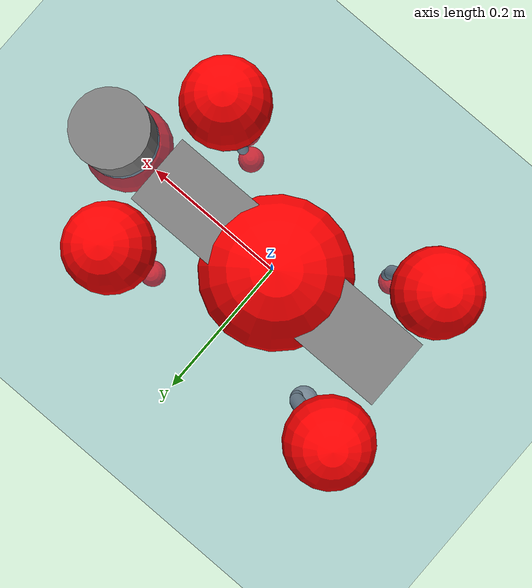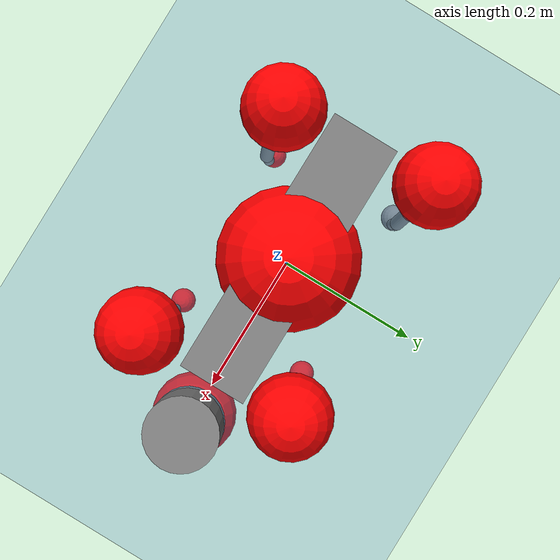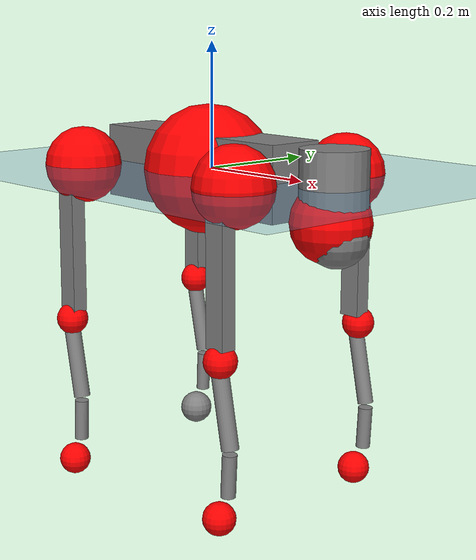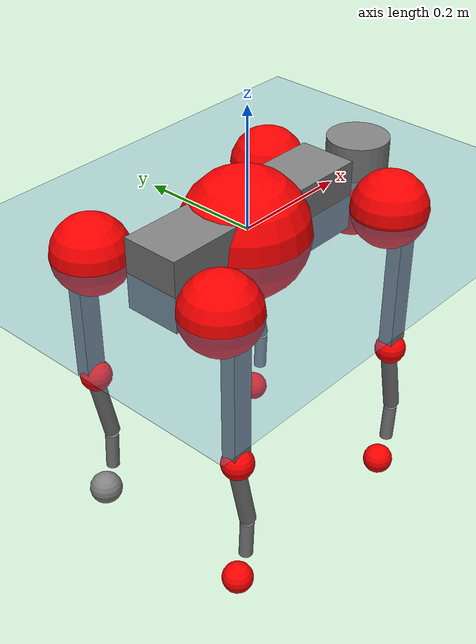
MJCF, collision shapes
<mujoco model="go2">
  <compiler angle="radian" assetdir="assets" balanceinertia="true" inertiafromgeom="false"/>

  <option timestep="0.005" density="1.2" viscosity="2e-05"/>

  <size nkey="1"/>

  <visual>
    <quality shadowsize="8192"/>
    <map shadowclip="0.5"/>
  </visual>

  <default>
    <default class="/">
      <geom contype="0" conaffinity="0" group="1" solref="-1000 -80"/>
      <site size="0.01 0.005 0.005" group="5"/>
      <general forcelimited="true" biastype="affine" gainprm="20" biasprm="0 -20 -0.5"/>
      <default class="go2">
        <joint armature="0.01" damping="0.01" frictionloss="0.2"/>
        <geom condim="1" margin="0.001"/>
        <default class="visual">
          <geom type="mesh" group="2"/>
        </default>
        <default class="collision">
          <geom group="3"/>
          <default class="foot">
            <geom size="0.022 0 0" condim="6" priority="1" friction="0.8 0.02 0.01" solimp="0.015 1 0.022"/>
          </default>
        </default>
        <default class="reward_collision_sphere">
          <geom group="5" rgba="1 0 0 1"/>
        </default>
      </default>
    </default>
  </default>

  <asset>
    <texture type="skybox" colorspace="auto" name="//unnamed_texture_0" builtin="gradient" rgb1="0.95 0.95 0.95" rgb2="0.95 0.95 0.95" width="100" height="600"/>
    <texture type="2d" colorspace="auto" name="texplane" builtin="checker" rgb1="0.345 0.575 0.748" rgb2="0.345 0.575 0.748" markrgb="1 1 1" width="512" height="512"/>
    <material name="MatPlane" class="/" texture="texplane" texuniform="true" texrepeat="2 2" specular="0.9"/>
    <material name="metal" class="/" rgba="0.9 0.95 0.95 1"/>
    <material name="black" class="/" rgba="0 0 0 1"/>
    <material name="white" class="/"/>
    <material name="gray" class="/" rgba="0.671705 0.692426 0.77427 1"/>
    <mesh name="base_0" class="/" file="base_0.obj"/>
    <mesh name="base_1" class="/" file="base_1.obj"/>
    <mesh name="base_2" class="/" file="base_2.obj"/>
    <mesh name="base_3" class="/" file="base_3.obj"/>
    <mesh name="base_4" class="/" file="base_4.obj"/>
    <mesh name="hip_0" class="/" file="hip_0.obj"/>
    <mesh name="hip_1" class="/" file="hip_1.obj"/>
    <mesh name="thigh_0" class="/" file="thigh_0.obj"/>
    <mesh name="thigh_1" class="/" file="thigh_1.obj"/>
    <mesh name="thigh_mirror_0" class="/" file="thigh_mirror_0.obj"/>
    <mesh name="thigh_mirror_1" class="/" file="thigh_mirror_1.obj"/>
    <mesh name="calf_0" class="/" file="calf_0.obj"/>
    <mesh name="calf_1" class="/" file="calf_1.obj"/>
    <mesh name="calf_mirror_0" class="/" file="calf_mirror_0.obj"/>
    <mesh name="calf_mirror_1" class="/" file="calf_mirror_1.obj"/>
    <mesh name="foot" class="/" file="foot.obj"/>
  </asset>

  <worldbody>
    <geom name="floor" class="/" size="100 100 0.125" type="plane" group="0" material="MatPlane"/>
    <light name="toplight_shadow" class="/" pos="0 0 5" dir="0.0990148 0.0990148 -0.990148" type="directional" ambient="0.04 0.04 0.04" diffuse="0.55 0.55 0.55" specular="0.12 0.12 0.12"/>
    <light name="toplight_fill" class="/" pos="0 0 5" dir="0.0990148 0.0990148 -0.990148" type="directional" castshadow="false" ambient="0.04 0.04 0.04" diffuse="0.3 0.3 0.3" specular="0.08 0.08 0.08"/>
    <body name="trunk" childclass="go2" pos="-0.00688084 -0.000594273 -0.00201311" quat="1 0.000362323 -0.000138553 0.000335644">
      <inertial pos="0.0195494 -0.00223147 -0.00621285" quat="-0.00962807 0.717846 -0.00168532 0.696133" mass="7.89551" diaginertia="0.0733894 0.0863637 0.0498739"/>
      <joint name="//unnamed_joint_0" type="free" armature="0" damping="0" frictionloss="0"/>
      <geom name="//unnamed_geom_1" class="visual" material="black" mesh="base_0"/>
      <geom name="//unnamed_geom_2" class="visual" material="black" mesh="base_1"/>
      <geom name="//unnamed_geom_3" class="visual" material="black" mesh="base_2"/>
      <geom name="//unnamed_geom_4" class="visual" material="white" mesh="base_3"/>
      <geom name="//unnamed_geom_5" class="visual" material="gray" mesh="base_4"/>
      <geom name="trunk_1" class="collision" size="0.19526 0.0485295 0.0591696" type="box"/>
      <geom name="trunk_2" class="collision" size="0.0519032 0.0467129" pos="0.273255 0 0.0115721" type="cylinder"/>
      <geom name="trunk_3" class="collision" size="0.048789" pos="0.280926 0 -0.0694324"/>
      <geom name="//unnamed_geom_9" class="reward_collision_sphere" size="0.103806"/>
      <geom name="//unnamed_geom_10" class="reward_collision_sphere" size="0.0622838" pos="0.268461 0 -0.0520743"/>
      <site name="imu" pos="-0.0210395 -0.00946511 0.090742" size="0.0103806"/>
      <camera name="track" pos="0 -1.99639 0" quat="0.707107 0.707107 0 0" mode="trackcom"/>
      <camera name="ego_camera" pos="0.299143 0 0.0520743" quat="-0.5 -0.5 0.5 0.5"/>
      <body name="FL_hip" pos="0.187258 0.0476333 0.00304485" quat="0.999995 -0.00299429 0.000562948 -0.000257605">
        <inertial pos="0.00258136 0.00278747 -0.00181249" quat="0.497288 0.499065 0.504528 0.499089" mass="0.730381" diaginertia="0.000689126 0.000609794 0.000950792"/>
        <joint name="FL_hip_joint" pos="0 0 0" axis="0.998814 -0.00690668 0.0481872" stiffness="0.0376239" range="-1.08746 1.04731" armature="0.0145244" damping="0.0132702" frictionloss="0.189957"/>
        <geom name="//unnamed_geom_11" class="visual" material="metal" mesh="hip_0"/>
        <geom name="//unnamed_geom_12" class="visual" material="gray" mesh="hip_1"/>
        <geom name="//unnamed_geom_13" class="collision" size="0.0477509 0.0207613" pos="0 0.0798555 0" quat="0.707107 0.707107 0 0" type="cylinder"/>
        <geom name="//unnamed_geom_14" class="reward_collision_sphere" size="0.0622838" pos="0 0.0698736 0"/>
        <body name="FL_thigh" pos="0.00346368 0.0950445 0.00264842" quat="1 0.000547142 -0.000226687 -0.000126871">
          <inertial pos="-0.00589183 -0.0215515 -0.028977" quat="0.832741 0.0814593 -0.0160435 0.547402" mass="1.31945" diaginertia="0.0049158 0.00577031 0.00178982"/>
          <joint name="FL_thigh_joint" pos="0 0 0" axis="-0.00993549 0.999923 0.00748967" stiffness="0.018139" range="-1.58971 3.49469" armature="0.00707742" damping="0.019673" frictionloss="0.235319"/>
          <geom name="//unnamed_geom_15" class="visual" material="metal" mesh="thigh_0"/>
          <geom name="//unnamed_geom_16" class="visual" material="gray" mesh="thigh_1"/>
          <geom name="//unnamed_geom_17" class="collision" size="0.110554 0.0127163 0.0176471" pos="0 0 -0.123242" quat="0.707107 0 0.707107 0" type="box"/>
          <body name="FL_calf" pos="0.00138745 0.00914348 -0.248436" quat="0.999998 -0.000260555 -0.0009 -0.00190498">
            <inertial pos="0.0043751 -0.00171884 -0.166092" quat="0.710353 -0.0353505 -0.0161544 0.702772" mass="0.250045" diaginertia="0.00123309 0.00139954 0.00011416"/>
            <joint name="FL_calf_joint" pos="0 0 0" axis="-0.00288605 0.999995 0.00084215" stiffness="0.00914147" range="-2.72197 -0.871767" armature="0.0104075" damping="0.0283183" frictionloss="0.228862"/>
            <geom name="//unnamed_geom_18" class="visual" material="gray" mesh="calf_0"/>
            <geom name="//unnamed_geom_19" class="visual" material="black" mesh="calf_1"/>
            <geom name="FL_calf0" class="collision" size="0.0124568 0.0622838" pos="0.00767032 0 -0.0694324" quat="0.994493 0 -0.104807 0" type="cylinder"/>
            <geom name="//unnamed_geom_21" class="collision" size="0.0114187 0.0337371" pos="0.0191758 0 -0.171267" quat="0.999688 0 0.0249974 0" type="cylinder"/>
            <geom name="//unnamed_geom_22" class="visual" pos="0 0 -0.246485" quat="1 0 0 0" material="black" mesh="foot"/>
            <geom name="FL_foot" class="foot" size="0.0191052" pos="-0.00191758 0 -0.246485"/>
            <geom name="//unnamed_geom_24" class="reward_collision_sphere" size="0.0259516"/>
            <geom name="//unnamed_geom_25" class="reward_collision_sphere" size="0.0259516" pos="-0.00191758 0 -0.246485"/>
            <site name="FL_foot" class="foot" pos="-0.00191758 0 -0.246485" size="0.0103806"/>
          </body>
        </body>
      </body>
      <body name="FR_hip" pos="0.19437 -0.0550979 0.00604745" quat="1 0.00079203 -0.000570961 -3.8167e-05">
        <inertial pos="-0.0138025 -0.00129743 0.00760703" quat="0.50891 0.495987 0.502924 0.492011" mass="0.697548" diaginertia="0.000628201 0.000555121 0.000900255"/>
        <joint name="FR_hip_joint" pos="0 0 0" axis="0.999433 0.0304655 0.0143466" stiffness="0.013783" range="-0.89502 1.08672" armature="0.0105423" damping="0.00465137" frictionloss="0.269466"/>
        <geom name="//unnamed_geom_26" class="visual" pos="0 -1.38525e-09 -5.94162e-08" quat="4.63268e-05 1 0 0" material="metal" mesh="hip_0"/>
        <geom name="//unnamed_geom_27" class="visual" pos="0 -2.24566e-09 1.46959e-07" quat="4.63268e-05 1 0 0" material="gray" mesh="hip_1"/>
        <geom name="//unnamed_geom_28" class="collision" size="0.0477509 0.0207613" pos="0 -0.0798555 0" quat="0.707107 0.707107 0 0" type="cylinder"/>
        <geom name="//unnamed_geom_29" class="reward_collision_sphere" size="0.0622838" pos="0 -0.0698736 0"/>
        <body name="FR_thigh" pos="-0.000208937 -0.0961274 -0.00280098" quat="1 -7.41282e-07 -4.74074e-07 -3.37872e-07">
          <inertial pos="-0.00161864 0.0125284 -0.0371616" quat="0.552032 -0.0220119 0.0826364 0.829426" mass="1.28659" diaginertia="0.00476253 0.00592016 0.00182612"/>
          <joint name="FR_thigh_joint" pos="0 0 0" axis="-0.023103 -0.999693 -0.00899901" range="-3.53003 1.53405" armature="0.0100354" damping="0.0324963" frictionloss="0.223232"/>
          <geom name="//unnamed_geom_30" class="visual" material="metal" mesh="thigh_mirror_0"/>
          <geom name="//unnamed_geom_31" class="visual" material="gray" mesh="thigh_mirror_1"/>
          <geom name="//unnamed_geom_32" class="collision" size="0.110554 0.0127163 0.0176471" pos="0 0 -0.123242" quat="0.707107 0 0.707107 0" type="box"/>
          <body name="FR_calf" pos="-5.91656e-05 9.85407e-05 -0.252513" quat="0.999991 0.00167081 0.00383237 -0.00122269">
            <inertial pos="-0.0038431 0.0041539 -0.169571" quat="0.707295 -0.00190254 0.00687889 0.706882" mass="0.283697" diaginertia="0.00115128 0.00130579 9.60242e-05"/>
            <joint name="FR_calf_joint" pos="0 0 0" axis="-0.001964 -0.999998 -0.000388531" range="0.996563 2.68367" armature="0.0114414" damping="0" frictionloss="0.138581"/>
            <geom name="//unnamed_geom_33" class="visual" material="gray" mesh="calf_mirror_0"/>
            <geom name="//unnamed_geom_34" class="visual" material="black" mesh="calf_mirror_1"/>
            <geom name="FR_calf0" class="collision" size="0.0134948 0.0622838" pos="0.0095879 0 -0.0694324" quat="0.995004 0 -0.0998334 0" type="cylinder"/>
            <geom name="//unnamed_geom_36" class="collision" size="0.0114187 0.0337371" pos="0.0191758 0 -0.171267" quat="0.999688 0 0.0249974 0" type="cylinder"/>
            <geom name="//unnamed_geom_37" class="visual" pos="0 0 -0.246485" quat="1 0 0 0" material="black" mesh="foot"/>
            <geom name="FR_foot" class="foot" size="0.0229351" pos="-0.00191758 0 -0.246485"/>
            <geom name="//unnamed_geom_39" class="reward_collision_sphere" size="0.0259516"/>
            <geom name="//unnamed_geom_40" class="reward_collision_sphere" size="0.0259516" pos="-0.00191758 0 -0.246485"/>
            <site name="FR_foot" class="foot" pos="-0.00191758 0 -0.246485" size="0.0103806"/>
          </body>
        </body>
      </body>
      <body name="RL_hip" pos="-0.195593 0.0527199 0.00187393" quat="1 -1.28126e-05 -2.75683e-05 1.72678e-05">
        <inertial pos="-0.00280404 0.0114341 0.000459737" quat="0.53141 0.48027 0.494148 0.492709" mass="0.771909" diaginertia="0.000707323 0.000584687 0.00107079"/>
        <joint name="RL_hip_joint" pos="0 0 0" axis="-0.999981 0.0045178 -0.00428466" stiffness="0.0044078" range="-1.12884 1.03813" armature="0.0106147" damping="0" frictionloss="0.208473"/>
        <geom name="//unnamed_geom_41" class="visual" pos="1.72852e-09 0 3.3883e-07" quat="4.63268e-05 0 1 0" material="metal" mesh="hip_0"/>
        <geom name="//unnamed_geom_42" class="visual" pos="2.80214e-09 0 3.00494e-07" quat="4.63268e-05 0 1 0" material="gray" mesh="hip_1"/>
        <geom name="//unnamed_geom_43" class="collision" size="0.0477509 0.0207613" pos="0 0.0798555 0" quat="0.707107 0.707107 0 0" type="cylinder"/>
        <geom name="//unnamed_geom_44" class="reward_collision_sphere" size="0.0622838" pos="0 0.0698736 0"/>
        <body name="RL_thigh" pos="-0.00243827 0.0944729 0.00284076" quat="1 -8.33253e-05 0.00015983 -1.98337e-05">
          <inertial pos="-0.00235036 -0.0306112 -0.0359214" quat="0.840587 0.09724 -0.0193246 0.532527" mass="1.23727" diaginertia="0.00477424 0.00560317 0.00192126"/>
          <joint name="RL_thigh_joint" pos="0 0 0" axis="-0.00379365 0.999341 -0.0360901" stiffness="0.0250149" range="-0.604433 4.47362" armature="0.00649609" damping="0.00740552" frictionloss="0.144815"/>
          <geom name="//unnamed_geom_45" class="visual" material="metal" mesh="thigh_0"/>
          <geom name="//unnamed_geom_46" class="visual" material="gray" mesh="thigh_1"/>
          <geom name="//unnamed_geom_47" class="collision" size="0.110554 0.0127163 0.0176471" pos="0 0 -0.123242" quat="0.707107 0 0.707107 0" type="box"/>
          <body name="RL_calf" pos="0.00351939 -0.00581748 -0.237587" quat="0.999989 0.00405898 -0.000809684 -0.00200416">
            <inertial pos="0.00793893 1.46783e-05 -0.173656" quat="0.717316 0.00185941 0.00217486 0.696742" mass="0.296278" diaginertia="0.00119185 0.0014829 0.000113015"/>
            <joint name="RL_calf_joint" pos="0 0 0" axis="-0.00136411 0.999998 -0.00111988" stiffness="0.00805348" range="-2.70447 -0.767954" armature="0.010878" damping="0.00811447" frictionloss="0.26157"/>
            <geom name="//unnamed_geom_48" class="visual" material="gray" mesh="calf_0"/>
            <geom name="//unnamed_geom_49" class="visual" material="black" mesh="calf_1"/>
            <geom name="RL_calf0" class="collision" size="0.0134948 0.0622838" pos="0.0095879 0 -0.0694324" quat="0.995004 0 -0.0998334 0" type="cylinder"/>
            <geom name="//unnamed_geom_51" class="collision" size="0.0114187 0.0337371" pos="0.0191758 0 -0.171267" quat="0.999688 0 0.0249974 0" type="cylinder"/>
            <geom name="//unnamed_geom_52" class="visual" pos="0 0 -0.246485" quat="1 0 0 0" material="black" mesh="foot"/>
            <geom name="RL_foot" class="foot" size="0.0279789" pos="-0.00191758 0 -0.246485"/>
            <geom name="//unnamed_geom_54" class="reward_collision_sphere" size="0.0259516"/>
            <geom name="//unnamed_geom_55" class="reward_collision_sphere" size="0.0259516" pos="-0.00191758 0 -0.246485"/>
            <site name="RL_foot" class="foot" pos="-0.00191758 0 -0.246485" size="0.0103806"/>
          </body>
        </body>
      </body>
      <body name="RR_hip" pos="-0.177197 -0.0470361 -0.000178768" quat="1 -1.2409e-05 1.12695e-05 2.21872e-05">
        <inertial pos="0.000731766 -0.00402128 0.000632975" quat="0.515072 0.461763 0.510583 0.510667" mass="0.739397" diaginertia="0.000678451 0.000552862 0.00093662"/>
        <joint name="RR_hip_joint" pos="0 0 0" axis="-0.999078 0.0176337 0.0391518" range="-1.05613 1.0528" armature="0.0106922" damping="0.000626685" frictionloss="0.220427"/>
        <geom name="//unnamed_geom_56" class="visual" pos="-1.72716e-09 -1.38525e-09 3.98246e-07" quat="2.14617e-09 4.63268e-05 4.63268e-05 -1" material="metal" mesh="hip_0"/>
        <geom name="//unnamed_geom_57" class="visual" pos="-2.80551e-09 -2.24566e-09 1.53535e-07" quat="2.14617e-09 4.63268e-05 4.63268e-05 -1" material="gray" mesh="hip_1"/>
        <geom name="//unnamed_geom_58" class="collision" size="0.0477509 0.0207613" pos="0 -0.0798555 0" quat="0.707107 0.707107 0 0" type="cylinder"/>
        <geom name="//unnamed_geom_59" class="reward_collision_sphere" size="0.0622838" pos="0 -0.0698736 0"/>
        <body name="RR_thigh" pos="0.000891135 -0.0961677 -0.00717043" quat="1 -0.000166939 -1.91564e-05 7.23318e-05">
          <inertial pos="-0.00256769 0.0203428 -0.0374819" quat="0.515181 -0.00279702 0.0839552 0.852955" mass="1.28745" diaginertia="0.00476827 0.00542818 0.00162675"/>
          <joint name="RR_thigh_joint" pos="0 0 0" axis="0.00435157 -0.999981 0.00441086" stiffness="0.0223722" range="-4.52682 0.519151" armature="0.00756069" damping="0.0398183" frictionloss="0.226574"/>
          <geom name="//unnamed_geom_60" class="visual" material="metal" mesh="thigh_mirror_0"/>
          <geom name="//unnamed_geom_61" class="visual" material="gray" mesh="thigh_mirror_1"/>
          <geom name="//unnamed_geom_62" class="collision" size="0.110554 0.0127163 0.0176471" pos="0 0 -0.123242" quat="0.707107 0 0.707107 0" type="box"/>
          <body name="RR_calf" pos="-0.00103159 -0.00311555 -0.248783" quat="0.999999 -0.000243872 -0.000865579 -0.000585937">
            <inertial pos="0.0127444 0.00936663 -0.171604" quat="0.696897 -0.00376231 0.00467518 0.717146" mass="0.243158" diaginertia="0.00123222 0.001301 0.000106951"/>
            <joint name="RR_calf_joint" pos="0 0 0" axis="-0.00185943 -0.999958 0.0089906" range="0.842817 2.56381" armature="0.0100681" damping="0.0101529" frictionloss="0.122657"/>
            <geom name="//unnamed_geom_63" class="visual" material="gray" mesh="calf_mirror_0"/>
            <geom name="//unnamed_geom_64" class="visual" material="black" mesh="calf_mirror_1"/>
            <geom name="RR_calf0" class="collision" size="0.0134948 0.0622838" pos="0.0095879 0 -0.0694324" quat="0.995004 0 -0.0998334 0" type="cylinder"/>
            <geom name="//unnamed_geom_66" class="collision" size="0.0114187 0.0337371" pos="0.0191758 0 -0.171267" quat="0.999688 0 0.0249974 0" type="cylinder"/>
            <geom name="//unnamed_geom_67" class="visual" pos="0 0 -0.246485" quat="1 0 0 0" material="black" mesh="foot"/>
            <geom name="RR_foot" class="foot" size="0.0160259" pos="-0.00191758 0 -0.246485"/>
            <geom name="//unnamed_geom_69" class="reward_collision_sphere" size="0.0259516"/>
            <geom name="//unnamed_geom_70" class="reward_collision_sphere" size="0.0259516" pos="-0.00191758 0 -0.246485"/>
            <site name="RR_foot" class="foot" pos="-0.00191758 0 -0.246485" size="0.0103806"/>
          </body>
        </body>
      </body>
    </body>
  </worldbody>

  <contact>
    <pair class="/" geom1="floor" geom2="FL_foot" name="//unnamed_contact_0"/>
    <pair class="/" geom1="floor" geom2="FR_foot" name="//unnamed_contact_1"/>
    <pair class="/" geom1="floor" geom2="RL_foot" name="//unnamed_contact_2"/>
    <pair class="/" geom1="floor" geom2="RR_foot" name="//unnamed_contact_3"/>
  </contact>

  <actuator>
    <general name="FL_hip" class="/" joint="FL_hip_joint" forcerange="-24.8299 24.8299" gainprm="20.838" biasprm="0 -20.838 -0.523778"/>
    <general name="FL_thigh" class="/" joint="FL_thigh_joint" forcerange="-30.1535 30.1535" gainprm="20.838" biasprm="0 -20.838 -0.523778"/>
    <general name="FL_calf" class="/" joint="FL_calf_joint" forcerange="-45.2158 45.2158" gainprm="20.838" biasprm="0 -20.838 -0.523778"/>
    <general name="FR_hip" class="/" joint="FR_hip_joint" forcerange="-24.1991 24.1991" gainprm="20.838" biasprm="0 -20.838 -0.523778"/>
    <general name="FR_thigh" class="/" joint="FR_thigh_joint" forcerange="-26.3122 26.3122" gainprm="20.838" biasprm="0 -20.838 -0.523778"/>
    <general name="FR_calf" class="/" joint="FR_calf_joint" forcerange="-41.5183 41.5183" gainprm="20.838" biasprm="0 -20.838 -0.523778"/>
    <general name="RL_hip" class="/" joint="RL_hip_joint" forcerange="-24.275 24.275" gainprm="20.838" biasprm="0 -20.838 -0.523778"/>
    <general name="RL_thigh" class="/" joint="RL_thigh_joint" forcerange="-21.5955 21.5955" gainprm="20.838" biasprm="0 -20.838 -0.523778"/>
    <general name="RL_calf" class="/" joint="RL_calf_joint" forcerange="-51.4287 51.4287" gainprm="20.838" biasprm="0 -20.838 -0.523778"/>
    <general name="RR_hip" class="/" joint="RR_hip_joint" forcerange="-22.8029 22.8029" gainprm="20.838" biasprm="0 -20.838 -0.523778"/>
    <general name="RR_thigh" class="/" joint="RR_thigh_joint" forcerange="-24.8828 24.8828" gainprm="20.838" biasprm="0 -20.838 -0.523778"/>
    <general name="RR_calf" class="/" joint="RR_calf_joint" forcerange="-63.4543 63.4543" gainprm="20.838" biasprm="0 -20.838 -0.523778"/>
  </actuator>

  <sensor>
    <gyro site="imu" name="imu_angular_velocity"/>
    <velocimeter site="imu" name="imu_linear_velocity"/>
    <framelinvel objtype="site" objname="FL_foot" name="FL_foot_global_linear_velocity"/>
    <framelinvel objtype="site" objname="FR_foot" name="FR_foot_global_linear_velocity"/>
    <framelinvel objtype="site" objname="RL_foot" name="RL_foot_global_linear_velocity"/>
    <framelinvel objtype="site" objname="RR_foot" name="RR_foot_global_linear_velocity"/>
  </sensor>

  <keyframe>
    <key name="home" qpos="0 0 0.325 1 0 0 0 0.1 0.8 -1.5 -0.1 -0.8 1.5 -0.1 0.8 -1.5 0.1 -0.8 1.5"/>
  </keyframe>
</mujoco>
